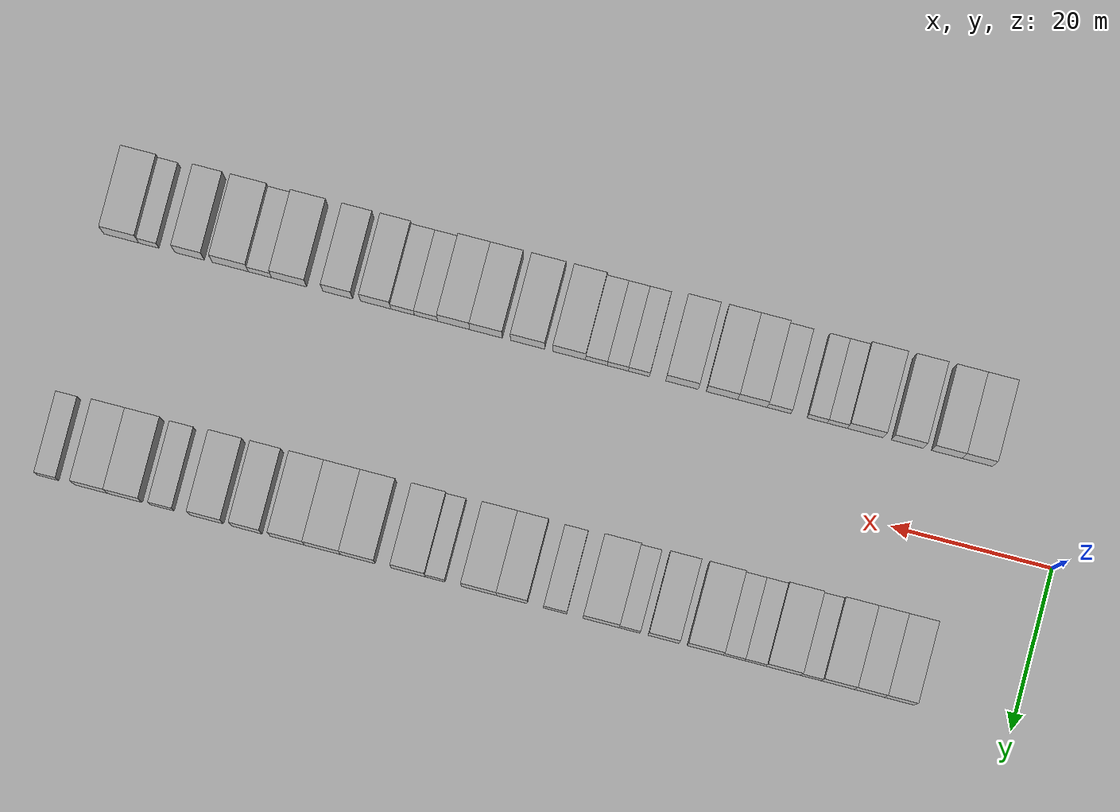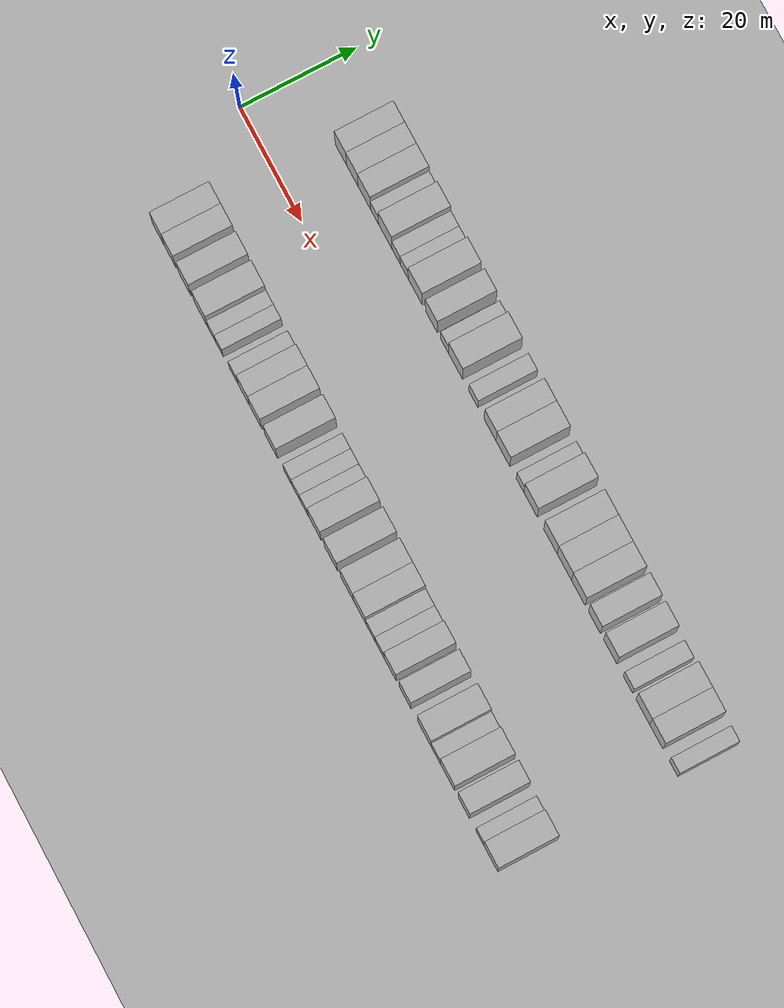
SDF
<sdf version="1.6">
 <world name="default">
  <include><name>ground_plane_1</name><uri>model://HANNAS_ground_plane</uri></include>
  <include>
   <name>ground_plane_2</name>
   <uri>model://HANNAS_ground_plane</uri>
   <pose>100 0 0  0 0 0</pose>
  </include>
  <model name="building_1">
   <static>1</static>
   <pose>13.8397 15.0000 0 0.000000 0.000000 1.570796</pose>
   <link name="link">
    <pose>0 0 4.50 0 0 0</pose>
    <collision name="collision"><geometry><box><size>10.0000 3.6794 9.0000</size></box></geometry></collision>
    <visual name="visual">
     <cast_shadows>0</cast_shadows>
     <geometry><box><size>10.0000 3.6794 9.0000</size></box></geometry>
     <material>
      <script>
       <uri>model://HANNAS_wall/materials/scripts</uri>
       <uri>model://HANNAS_wall/materials/textures</uri>
       <name>vrc/HANNAS_wall</name>
      </script>
     </material>
    </visual>
   </link>
  </model>
  <model name="building_2">
   <static>1</static>
   <pose>17.5218 15.0000 0 0.000000 0.000000 1.570796</pose>
   <link name="link">
    <pose>0 0 4.50 0 0 0</pose>
    <collision name="collision"><geometry><box><size>10.0000 3.6849 9.0000</size></box></geometry></collision>
    <visual name="visual">
     <cast_shadows>0</cast_shadows>
     <geometry><box><size>10.0000 3.6849 9.0000</size></box></geometry>
     <material>
      <script>
       <uri>model://HANNAS_wall/materials/scripts</uri>
       <uri>model://HANNAS_wall/materials/textures</uri>
       <name>vrc/HANNAS_wall</name>
      </script>
     </material>
    </visual>
   </link>
  </model>
  <model name="building_3">
   <static>1</static>
   <pose>21.3801 15.0000 0 0.000000 0.000000 1.570796</pose>
   <link name="link">
    <pose>0 0 4.50 0 0 0</pose>
    <collision name="collision"><geometry><box><size>10.0000 4.0316 9.0000</size></box></geometry></collision>
    <visual name="visual">
     <cast_shadows>0</cast_shadows>
     <geometry><box><size>10.0000 4.0316 9.0000</size></box></geometry>
     <material>
      <script>
       <uri>model://HANNAS_wall/materials/scripts</uri>
       <uri>model://HANNAS_wall/materials/textures</uri>
       <name>vrc/HANNAS_wall</name>
      </script>
     </material>
    </visual>
   </link>
  </model>
  <model name="building_4">
   <static>1</static>
   <pose>24.6858 15.0000 0 0.000000 0.000000 1.570796</pose>
   <link name="link">
    <pose>0 0 3.00 0 0 0</pose>
    <collision name="collision"><geometry><box><size>10.0000 2.5798 6.0000</size></box></geometry></collision>
    <visual name="visual">
     <cast_shadows>0</cast_shadows>
     <geometry><box><size>10.0000 2.5798 6.0000</size></box></geometry>
     <material>
      <script>
       <uri>model://HANNAS_wall/materials/scripts</uri>
       <uri>model://HANNAS_wall/materials/textures</uri>
       <name>vrc/HANNAS_wall</name>
      </script>
     </material>
    </visual>
   </link>
  </model>
  <model name="building_5">
   <static>1</static>
   <pose>28.1155 15.0000 0 0.000000 0.000000 1.570796</pose>
   <link name="link">
    <pose>0 0 4.50 0 0 0</pose>
    <collision name="collision"><geometry><box><size>10.0000 4.2796 9.0000</size></box></geometry></collision>
    <visual name="visual">
     <cast_shadows>0</cast_shadows>
     <geometry><box><size>10.0000 4.2796 9.0000</size></box></geometry>
     <material>
      <script>
       <uri>model://HANNAS_wall/materials/scripts</uri>
       <uri>model://HANNAS_wall/materials/textures</uri>
       <name>vrc/HANNAS_wall</name>
      </script>
     </material>
    </visual>
   </link>
  </model>
  <model name="building_6">
   <static>1</static>
   <pose>31.5834 15.0000 0 0.000000 0.000000 1.570796</pose>
   <link name="link">
    <pose>0 0 3.00 0 0 0</pose>
    <collision name="collision"><geometry><box><size>10.0000 2.6562 6.0000</size></box></geometry></collision>
    <visual name="visual">
     <cast_shadows>0</cast_shadows>
     <geometry><box><size>10.0000 2.6562 6.0000</size></box></geometry>
     <material>
      <script>
       <uri>model://HANNAS_wall/materials/scripts</uri>
       <uri>model://HANNAS_wall/materials/textures</uri>
       <name>vrc/HANNAS_wall</name>
      </script>
     </material>
    </visual>
   </link>
  </model>
  <model name="building_7">
   <static>1</static>
   <pose>34.2161 15.0000 0 0.000000 0.000000 1.570796</pose>
   <link name="link">
    <pose>0 0 3.00 0 0 0</pose>
    <collision name="collision"><geometry><box><size>10.0000 2.6093 6.0000</size></box></geometry></collision>
    <visual name="visual">
     <cast_shadows>0</cast_shadows>
     <geometry><box><size>10.0000 2.6093 6.0000</size></box></geometry>
     <material>
      <script>
       <uri>model://HANNAS_wall/materials/scripts</uri>
       <uri>model://HANNAS_wall/materials/textures</uri>
       <name>vrc/HANNAS_wall</name>
      </script>
     </material>
    </visual>
   </link>
  </model>
  <model name="building_8">
   <static>1</static>
   <pose>37.7383 15.0000 0 0.000000 0.000000 1.570796</pose>
   <link name="link">
    <pose>0 0 4.50 0 0 0</pose>
    <collision name="collision"><geometry><box><size>10.0000 4.4352 9.0000</size></box></geometry></collision>
    <visual name="visual">
     <cast_shadows>0</cast_shadows>
     <geometry><box><size>10.0000 4.4352 9.0000</size></box></geometry>
     <material>
      <script>
       <uri>model://HANNAS_wall/materials/scripts</uri>
       <uri>model://HANNAS_wall/materials/textures</uri>
       <name>vrc/HANNAS_wall</name>
      </script>
     </material>
    </visual>
   </link>
  </model>
  <model name="building_9">
   <static>1</static>
   <pose>42.8617 15.0000 0 0.000000 0.000000 1.570796</pose>
   <link name="link">
    <pose>0 0 4.50 0 0 0</pose>
    <collision name="collision"><geometry><box><size>10.0000 3.8115 9.0000</size></box></geometry></collision>
    <visual name="visual">
     <cast_shadows>0</cast_shadows>
     <geometry><box><size>10.0000 3.8115 9.0000</size></box></geometry>
     <material>
      <script>
       <uri>model://HANNAS_wall/materials/scripts</uri>
       <uri>model://HANNAS_wall/materials/textures</uri>
       <name>vrc/HANNAS_wall</name>
      </script>
     </material>
    </visual>
   </link>
  </model>
  <model name="building_10">
   <static>1</static>
   <pose>47.0494 15.0000 0 0.000000 0.000000 1.570796</pose>
   <link name="link">
    <pose>0 0 3.00 0 0 0</pose>
    <collision name="collision"><geometry><box><size>10.0000 2.5639 6.0000</size></box></geometry></collision>
    <visual name="visual">
     <cast_shadows>0</cast_shadows>
     <geometry><box><size>10.0000 2.5639 6.0000</size></box></geometry>
     <material>
      <script>
       <uri>model://HANNAS_wall/materials/scripts</uri>
       <uri>model://HANNAS_wall/materials/textures</uri>
       <name>vrc/HANNAS_wall</name>
      </script>
     </material>
    </visual>
   </link>
  </model>
  <model name="building_11">
   <static>1</static>
   <pose>50.5670 15.0000 0 0.000000 0.000000 1.570796</pose>
   <link name="link">
    <pose>0 0 4.50 0 0 0</pose>
    <collision name="collision"><geometry><box><size>10.0000 4.4715 9.0000</size></box></geometry></collision>
    <visual name="visual">
     <cast_shadows>0</cast_shadows>
     <geometry><box><size>10.0000 4.4715 9.0000</size></box></geometry>
     <material>
      <script>
       <uri>model://HANNAS_wall/materials/scripts</uri>
       <uri>model://HANNAS_wall/materials/textures</uri>
       <name>vrc/HANNAS_wall</name>
      </script>
     </material>
    </visual>
   </link>
  </model>
  <model name="building_12">
   <static>1</static>
   <pose>56.2342 15.0000 0 0.000000 0.000000 1.570796</pose>
   <link name="link">
    <pose>0 0 3.00 0 0 0</pose>
    <collision name="collision"><geometry><box><size>10.0000 2.8628 6.0000</size></box></geometry></collision>
    <visual name="visual">
     <cast_shadows>0</cast_shadows>
     <geometry><box><size>10.0000 2.8628 6.0000</size></box></geometry>
     <material>
      <script>
       <uri>model://HANNAS_wall/materials/scripts</uri>
       <uri>model://HANNAS_wall/materials/textures</uri>
       <name>vrc/HANNAS_wall</name>
      </script>
     </material>
    </visual>
   </link>
  </model>
  <model name="building_13">
   <static>1</static>
   <pose>61.5704 15.0000 0 0.000000 0.000000 1.570796</pose>
   <link name="link">
    <pose>0 0 4.50 0 0 0</pose>
    <collision name="collision"><geometry><box><size>10.0000 3.8097 9.0000</size></box></geometry></collision>
    <visual name="visual">
     <cast_shadows>0</cast_shadows>
     <geometry><box><size>10.0000 3.8097 9.0000</size></box></geometry>
     <material>
      <script>
       <uri>model://HANNAS_wall/materials/scripts</uri>
       <uri>model://HANNAS_wall/materials/textures</uri>
       <name>vrc/HANNAS_wall</name>
      </script>
     </material>
    </visual>
   </link>
  </model>
  <model name="building_14">
   <static>1</static>
   <pose>65.6387 15.0000 0 0.000000 0.000000 1.570796</pose>
   <link name="link">
    <pose>0 0 4.50 0 0 0</pose>
    <collision name="collision"><geometry><box><size>10.0000 4.3270 9.0000</size></box></geometry></collision>
    <visual name="visual">
     <cast_shadows>0</cast_shadows>
     <geometry><box><size>10.0000 4.3270 9.0000</size></box></geometry>
     <material>
      <script>
       <uri>model://HANNAS_wall/materials/scripts</uri>
       <uri>model://HANNAS_wall/materials/textures</uri>
       <name>vrc/HANNAS_wall</name>
      </script>
     </material>
    </visual>
   </link>
  </model>
  <model name="building_15">
   <static>1</static>
   <pose>71.0189 15.0000 0 0.000000 0.000000 1.570796</pose>
   <link name="link">
    <pose>0 0 3.00 0 0 0</pose>
    <collision name="collision"><geometry><box><size>10.0000 2.4332 6.0000</size></box></geometry></collision>
    <visual name="visual">
     <cast_shadows>0</cast_shadows>
     <geometry><box><size>10.0000 2.4332 6.0000</size></box></geometry>
     <material>
      <script>
       <uri>model://HANNAS_wall/materials/scripts</uri>
       <uri>model://HANNAS_wall/materials/textures</uri>
       <name>vrc/HANNAS_wall</name>
      </script>
     </material>
    </visual>
   </link>
  </model>
  <model name="building_16">
   <static>1</static>
   <pose>74.3353 15.0000 0 0.000000 0.000000 1.570796</pose>
   <link name="link">
    <pose>0 0 4.50 0 0 0</pose>
    <collision name="collision"><geometry><box><size>10.0000 4.1997 9.0000</size></box></geometry></collision>
    <visual name="visual">
     <cast_shadows>0</cast_shadows>
     <geometry><box><size>10.0000 4.1997 9.0000</size></box></geometry>
     <material>
      <script>
       <uri>model://HANNAS_wall/materials/scripts</uri>
       <uri>model://HANNAS_wall/materials/textures</uri>
       <name>vrc/HANNAS_wall</name>
      </script>
     </material>
    </visual>
   </link>
  </model>
  <model name="building_17">
   <static>1</static>
   <pose>80.5745 15.0000 0 0.000000 0.000000 1.570796</pose>
   <link name="link">
    <pose>0 0 4.50 0 0 0</pose>
    <collision name="collision"><geometry><box><size>10.0000 4.2787 9.0000</size></box></geometry></collision>
    <visual name="visual">
     <cast_shadows>0</cast_shadows>
     <geometry><box><size>10.0000 4.2787 9.0000</size></box></geometry>
     <material>
      <script>
       <uri>model://HANNAS_wall/materials/scripts</uri>
       <uri>model://HANNAS_wall/materials/textures</uri>
       <name>vrc/HANNAS_wall</name>
      </script>
     </material>
    </visual>
   </link>
  </model>
  <model name="building_18">
   <static>1</static>
   <pose>84.9429 15.0000 0 0.000000 0.000000 1.570796</pose>
   <link name="link">
    <pose>0 0 4.50 0 0 0</pose>
    <collision name="collision"><geometry><box><size>10.0000 4.4583 9.0000</size></box></geometry></collision>
    <visual name="visual">
     <cast_shadows>0</cast_shadows>
     <geometry><box><size>10.0000 4.4583 9.0000</size></box></geometry>
     <material>
      <script>
       <uri>model://HANNAS_wall/materials/scripts</uri>
       <uri>model://HANNAS_wall/materials/textures</uri>
       <name>vrc/HANNAS_wall</name>
      </script>
     </material>
    </visual>
   </link>
  </model>
  <model name="building_19">
   <static>1</static>
   <pose>89.2964 15.0000 0 0.000000 0.000000 1.570796</pose>
   <link name="link">
    <pose>0 0 4.50 0 0 0</pose>
    <collision name="collision"><geometry><box><size>10.0000 4.2488 9.0000</size></box></geometry></collision>
    <visual name="visual">
     <cast_shadows>0</cast_shadows>
     <geometry><box><size>10.0000 4.2488 9.0000</size></box></geometry>
     <material>
      <script>
       <uri>model://HANNAS_wall/materials/scripts</uri>
       <uri>model://HANNAS_wall/materials/textures</uri>
       <name>vrc/HANNAS_wall</name>
      </script>
     </material>
    </visual>
   </link>
  </model>
  <model name="building_20">
   <static>1</static>
   <pose>94.2962 15.0000 0 0.000000 0.000000 1.570796</pose>
   <link name="link">
    <pose>0 0 4.50 0 0 0</pose>
    <collision name="collision"><geometry><box><size>10.0000 3.7507 9.0000</size></box></geometry></collision>
    <visual name="visual">
     <cast_shadows>0</cast_shadows>
     <geometry><box><size>10.0000 3.7507 9.0000</size></box></geometry>
     <material>
      <script>
       <uri>model://HANNAS_wall/materials/scripts</uri>
       <uri>model://HANNAS_wall/materials/textures</uri>
       <name>vrc/HANNAS_wall</name>
      </script>
     </material>
    </visual>
   </link>
  </model>
  <model name="building_21">
   <static>1</static>
   <pose>99.2326 15.0000 0 0.000000 0.000000 1.570796</pose>
   <link name="link">
    <pose>0 0 4.50 0 0 0</pose>
    <collision name="collision"><geometry><box><size>10.0000 4.1222 9.0000</size></box></geometry></collision>
    <visual name="visual">
     <cast_shadows>0</cast_shadows>
     <geometry><box><size>10.0000 4.1222 9.0000</size></box></geometry>
     <material>
      <script>
       <uri>model://HANNAS_wall/materials/scripts</uri>
       <uri>model://HANNAS_wall/materials/textures</uri>
       <name>vrc/HANNAS_wall</name>
      </script>
     </material>
    </visual>
   </link>
  </model>
  <model name="building_22">
   <static>1</static>
   <pose>104.7581 15.0000 0 0.000000 0.000000 1.570796</pose>
   <link name="link">
    <pose>0 0 3.00 0 0 0</pose>
    <collision name="collision"><geometry><box><size>10.0000 2.9286 6.0000</size></box></geometry></collision>
    <visual name="visual">
     <cast_shadows>0</cast_shadows>
     <geometry><box><size>10.0000 2.9286 6.0000</size></box></geometry>
     <material>
      <script>
       <uri>model://HANNAS_wall/materials/scripts</uri>
       <uri>model://HANNAS_wall/materials/textures</uri>
       <name>vrc/HANNAS_wall</name>
      </script>
     </material>
    </visual>
   </link>
  </model>
  <model name="building_23">
   <static>1</static>
   <pose>109.3536 15.0000 0 0.000000 0.000000 1.570796</pose>
   <link name="link">
    <pose>0 0 4.50 0 0 0</pose>
    <collision name="collision"><geometry><box><size>10.0000 4.2624 9.0000</size></box></geometry></collision>
    <visual name="visual">
     <cast_shadows>0</cast_shadows>
     <geometry><box><size>10.0000 4.2624 9.0000</size></box></geometry>
     <material>
      <script>
       <uri>model://HANNAS_wall/materials/scripts</uri>
       <uri>model://HANNAS_wall/materials/textures</uri>
       <name>vrc/HANNAS_wall</name>
      </script>
     </material>
    </visual>
   </link>
  </model>
  <model name="building_24">
   <static>1</static>
   <pose>113.5259 15.0000 0 0.000000 0.000000 1.570796</pose>
   <link name="link">
    <pose>0 0 4.50 0 0 0</pose>
    <collision name="collision"><geometry><box><size>10.0000 4.0823 9.0000</size></box></geometry></collision>
    <visual name="visual">
     <cast_shadows>0</cast_shadows>
     <geometry><box><size>10.0000 4.0823 9.0000</size></box></geometry>
     <material>
      <script>
       <uri>model://HANNAS_wall/materials/scripts</uri>
       <uri>model://HANNAS_wall/materials/textures</uri>
       <name>vrc/HANNAS_wall</name>
      </script>
     </material>
    </visual>
   </link>
  </model>
  <model name="building_25">
   <static>1</static>
   <pose>118.8828 15.0000 0 0.000000 0.000000 1.570796</pose>
   <link name="link">
    <pose>0 0 3.00 0 0 0</pose>
    <collision name="collision"><geometry><box><size>10.0000 2.6316 6.0000</size></box></geometry></collision>
    <visual name="visual">
     <cast_shadows>0</cast_shadows>
     <geometry><box><size>10.0000 2.6316 6.0000</size></box></geometry>
     <material>
      <script>
       <uri>model://HANNAS_wall/materials/scripts</uri>
       <uri>model://HANNAS_wall/materials/textures</uri>
       <name>vrc/HANNAS_wall</name>
      </script>
     </material>
    </visual>
   </link>
  </model>
  <model name="building_52">
   <static>1</static>
   <pose>11.8952 -15.0000 0 0.000000 0.000000 1.570796</pose>
   <link name="link">
    <pose>0 0 4.50 0 0 0</pose>
    <collision name="collision"><geometry><box><size>10.0000 3.7903 9.0000</size></box></geometry></collision>
    <visual name="visual">
     <cast_shadows>0</cast_shadows>
     <geometry><box><size>10.0000 3.7903 9.0000</size></box></geometry>
     <material>
      <script>
       <uri>model://HANNAS_wall/materials/scripts</uri>
       <uri>model://HANNAS_wall/materials/textures</uri>
       <name>vrc/HANNAS_wall</name>
      </script>
     </material>
    </visual>
   </link>
  </model>
  <model name="building_53">
   <static>1</static>
   <pose>15.6842 -15.0000 0 0.000000 0.000000 1.570796</pose>
   <link name="link">
    <pose>0 0 4.50 0 0 0</pose>
    <collision name="collision"><geometry><box><size>10.0000 3.7877 9.0000</size></box></geometry></collision>
    <visual name="visual">
     <cast_shadows>0</cast_shadows>
     <geometry><box><size>10.0000 3.7877 9.0000</size></box></geometry>
     <material>
      <script>
       <uri>model://HANNAS_wall/materials/scripts</uri>
       <uri>model://HANNAS_wall/materials/textures</uri>
       <name>vrc/HANNAS_wall</name>
      </script>
     </material>
    </visual>
   </link>
  </model>
  <model name="building_54">
   <static>1</static>
   <pose>20.5455 -15.0000 0 0.000000 0.000000 1.570796</pose>
   <link name="link">
    <pose>0 0 4.50 0 0 0</pose>
    <collision name="collision"><geometry><box><size>10.0000 3.9350 9.0000</size></box></geometry></collision>
    <visual name="visual">
     <cast_shadows>0</cast_shadows>
     <geometry><box><size>10.0000 3.9350 9.0000</size></box></geometry>
     <material>
      <script>
       <uri>model://HANNAS_wall/materials/scripts</uri>
       <uri>model://HANNAS_wall/materials/textures</uri>
       <name>vrc/HANNAS_wall</name>
      </script>
     </material>
    </visual>
   </link>
  </model>
  <model name="building_55">
   <static>1</static>
   <pose>25.7320 -15.0000 0 0.000000 0.000000 1.570796</pose>
   <link name="link">
    <pose>0 0 4.50 0 0 0</pose>
    <collision name="collision"><geometry><box><size>10.0000 4.4380 9.0000</size></box></geometry></collision>
    <visual name="visual">
     <cast_shadows>0</cast_shadows>
     <geometry><box><size>10.0000 4.4380 9.0000</size></box></geometry>
     <material>
      <script>
       <uri>model://HANNAS_wall/materials/scripts</uri>
       <uri>model://HANNAS_wall/materials/textures</uri>
       <name>vrc/HANNAS_wall</name>
      </script>
     </material>
    </visual>
   </link>
  </model>
  <model name="building_56">
   <static>1</static>
   <pose>29.2053 -15.0000 0 0.000000 0.000000 1.570796</pose>
   <link name="link">
    <pose>0 0 3.00 0 0 0</pose>
    <collision name="collision"><geometry><box><size>10.0000 2.5085 6.0000</size></box></geometry></collision>
    <visual name="visual">
     <cast_shadows>0</cast_shadows>
     <geometry><box><size>10.0000 2.5085 6.0000</size></box></geometry>
     <material>
      <script>
       <uri>model://HANNAS_wall/materials/scripts</uri>
       <uri>model://HANNAS_wall/materials/textures</uri>
       <name>vrc/HANNAS_wall</name>
      </script>
     </material>
    </visual>
   </link>
  </model>
  <model name="building_57">
   <static>1</static>
   <pose>31.7024 -15.0000 0 0.000000 0.000000 1.570796</pose>
   <link name="link">
    <pose>0 0 3.00 0 0 0</pose>
    <collision name="collision"><geometry><box><size>10.0000 2.4858 6.0000</size></box></geometry></collision>
    <visual name="visual">
     <cast_shadows>0</cast_shadows>
     <geometry><box><size>10.0000 2.4858 6.0000</size></box></geometry>
     <material>
      <script>
       <uri>model://HANNAS_wall/materials/scripts</uri>
       <uri>model://HANNAS_wall/materials/textures</uri>
       <name>vrc/HANNAS_wall</name>
      </script>
     </material>
    </visual>
   </link>
  </model>
  <model name="building_58">
   <static>1</static>
   <pose>36.4088 -15.0000 0 0.000000 0.000000 1.570796</pose>
   <link name="link">
    <pose>0 0 3.00 0 0 0</pose>
    <collision name="collision"><geometry><box><size>10.0000 2.9269 6.0000</size></box></geometry></collision>
    <visual name="visual">
     <cast_shadows>0</cast_shadows>
     <geometry><box><size>10.0000 2.9269 6.0000</size></box></geometry>
     <material>
      <script>
       <uri>model://HANNAS_wall/materials/scripts</uri>
       <uri>model://HANNAS_wall/materials/textures</uri>
       <name>vrc/HANNAS_wall</name>
      </script>
     </material>
    </visual>
   </link>
  </model>
  <model name="building_59">
   <static>1</static>
   <pose>39.6919 -15.0000 0 0.000000 0.000000 1.570796</pose>
   <link name="link">
    <pose>0 0 4.50 0 0 0</pose>
    <collision name="collision"><geometry><box><size>10.0000 3.6393 9.0000</size></box></geometry></collision>
    <visual name="visual">
     <cast_shadows>0</cast_shadows>
     <geometry><box><size>10.0000 3.6393 9.0000</size></box></geometry>
     <material>
      <script>
       <uri>model://HANNAS_wall/materials/scripts</uri>
       <uri>model://HANNAS_wall/materials/textures</uri>
       <name>vrc/HANNAS_wall</name>
      </script>
     </material>
    </visual>
   </link>
  </model>
  <model name="building_60">
   <static>1</static>
   <pose>43.4599 -15.0000 0 0.000000 0.000000 1.570796</pose>
   <link name="link">
    <pose>0 0 4.50 0 0 0</pose>
    <collision name="collision"><geometry><box><size>10.0000 3.8965 9.0000</size></box></geometry></collision>
    <visual name="visual">
     <cast_shadows>0</cast_shadows>
     <geometry><box><size>10.0000 3.8965 9.0000</size></box></geometry>
     <material>
      <script>
       <uri>model://HANNAS_wall/materials/scripts</uri>
       <uri>model://HANNAS_wall/materials/textures</uri>
       <name>vrc/HANNAS_wall</name>
      </script>
     </material>
    </visual>
   </link>
  </model>
  <model name="building_61">
   <static>1</static>
   <pose>48.4150 -15.0000 0 0.000000 0.000000 1.570796</pose>
   <link name="link">
    <pose>0 0 4.50 0 0 0</pose>
    <collision name="collision"><geometry><box><size>10.0000 4.0138 9.0000</size></box></geometry></collision>
    <visual name="visual">
     <cast_shadows>0</cast_shadows>
     <geometry><box><size>10.0000 4.0138 9.0000</size></box></geometry>
     <material>
      <script>
       <uri>model://HANNAS_wall/materials/scripts</uri>
       <uri>model://HANNAS_wall/materials/textures</uri>
       <name>vrc/HANNAS_wall</name>
      </script>
     </material>
    </visual>
   </link>
  </model>
  <model name="building_62">
   <static>1</static>
   <pose>53.7369 -15.0000 0 0.000000 0.000000 1.570796</pose>
   <link name="link">
    <pose>0 0 3.00 0 0 0</pose>
    <collision name="collision"><geometry><box><size>10.0000 2.6300 6.0000</size></box></geometry></collision>
    <visual name="visual">
     <cast_shadows>0</cast_shadows>
     <geometry><box><size>10.0000 2.6300 6.0000</size></box></geometry>
     <material>
      <script>
       <uri>model://HANNAS_wall/materials/scripts</uri>
       <uri>model://HANNAS_wall/materials/textures</uri>
       <name>vrc/HANNAS_wall</name>
      </script>
     </material>
    </visual>
   </link>
  </model>
  <model name="building_63">
   <static>1</static>
   <pose>56.3555 -15.0000 0 0.000000 0.000000 1.570796</pose>
   <link name="link">
    <pose>0 0 3.00 0 0 0</pose>
    <collision name="collision"><geometry><box><size>10.0000 2.6072 6.0000</size></box></geometry></collision>
    <visual name="visual">
     <cast_shadows>0</cast_shadows>
     <geometry><box><size>10.0000 2.6072 6.0000</size></box></geometry>
     <material>
      <script>
       <uri>model://HANNAS_wall/materials/scripts</uri>
       <uri>model://HANNAS_wall/materials/textures</uri>
       <name>vrc/HANNAS_wall</name>
      </script>
     </material>
    </visual>
   </link>
  </model>
  <model name="building_64">
   <static>1</static>
   <pose>59.0030 -15.0000 0 0.000000 0.000000 1.570796</pose>
   <link name="link">
    <pose>0 0 3.00 0 0 0</pose>
    <collision name="collision"><geometry><box><size>10.0000 2.6878 6.0000</size></box></geometry></collision>
    <visual name="visual">
     <cast_shadows>0</cast_shadows>
     <geometry><box><size>10.0000 2.6878 6.0000</size></box></geometry>
     <material>
      <script>
       <uri>model://HANNAS_wall/materials/scripts</uri>
       <uri>model://HANNAS_wall/materials/textures</uri>
       <name>vrc/HANNAS_wall</name>
      </script>
     </material>
    </visual>
   </link>
  </model>
  <model name="building_65">
   <static>1</static>
   <pose>62.3762 -15.0000 0 0.000000 0.000000 1.570796</pose>
   <link name="link">
    <pose>0 0 4.50 0 0 0</pose>
    <collision name="collision"><geometry><box><size>10.0000 4.0586 9.0000</size></box></geometry></collision>
    <visual name="visual">
     <cast_shadows>0</cast_shadows>
     <geometry><box><size>10.0000 4.0586 9.0000</size></box></geometry>
     <material>
      <script>
       <uri>model://HANNAS_wall/materials/scripts</uri>
       <uri>model://HANNAS_wall/materials/textures</uri>
       <name>vrc/HANNAS_wall</name>
      </script>
     </material>
    </visual>
   </link>
  </model>
  <model name="building_66">
   <static>1</static>
   <pose>67.5214 -15.0000 0 0.000000 0.000000 1.570796</pose>
   <link name="link">
    <pose>0 0 4.50 0 0 0</pose>
    <collision name="collision"><geometry><box><size>10.0000 4.2317 9.0000</size></box></geometry></collision>
    <visual name="visual">
     <cast_shadows>0</cast_shadows>
     <geometry><box><size>10.0000 4.2317 9.0000</size></box></geometry>
     <material>
      <script>
       <uri>model://HANNAS_wall/materials/scripts</uri>
       <uri>model://HANNAS_wall/materials/textures</uri>
       <name>vrc/HANNAS_wall</name>
      </script>
     </material>
    </visual>
   </link>
  </model>
  <model name="building_67">
   <static>1</static>
   <pose>72.6608 -15.0000 0 0.000000 0.000000 1.570796</pose>
   <link name="link">
    <pose>0 0 4.50 0 0 0</pose>
    <collision name="collision"><geometry><box><size>10.0000 4.0473 9.0000</size></box></geometry></collision>
    <visual name="visual">
     <cast_shadows>0</cast_shadows>
     <geometry><box><size>10.0000 4.0473 9.0000</size></box></geometry>
     <material>
      <script>
       <uri>model://HANNAS_wall/materials/scripts</uri>
       <uri>model://HANNAS_wall/materials/textures</uri>
       <name>vrc/HANNAS_wall</name>
      </script>
     </material>
    </visual>
   </link>
  </model>
  <model name="building_68">
   <static>1</static>
   <pose>76.6732 -15.0000 0 0.000000 0.000000 1.570796</pose>
   <link name="link">
    <pose>0 0 4.50 0 0 0</pose>
    <collision name="collision"><geometry><box><size>10.0000 3.9776 9.0000</size></box></geometry></collision>
    <visual name="visual">
     <cast_shadows>0</cast_shadows>
     <geometry><box><size>10.0000 3.9776 9.0000</size></box></geometry>
     <material>
      <script>
       <uri>model://HANNAS_wall/materials/scripts</uri>
       <uri>model://HANNAS_wall/materials/textures</uri>
       <name>vrc/HANNAS_wall</name>
      </script>
     </material>
    </visual>
   </link>
  </model>
  <model name="building_69">
   <static>1</static>
   <pose>80.1014 -15.0000 0 0.000000 0.000000 1.570796</pose>
   <link name="link">
    <pose>0 0 3.00 0 0 0</pose>
    <collision name="collision"><geometry><box><size>10.0000 2.8788 6.0000</size></box></geometry></collision>
    <visual name="visual">
     <cast_shadows>0</cast_shadows>
     <geometry><box><size>10.0000 2.8788 6.0000</size></box></geometry>
     <material>
      <script>
       <uri>model://HANNAS_wall/materials/scripts</uri>
       <uri>model://HANNAS_wall/materials/textures</uri>
       <name>vrc/HANNAS_wall</name>
      </script>
     </material>
    </visual>
   </link>
  </model>
  <model name="building_70">
   <static>1</static>
   <pose>82.9962 -15.0000 0 0.000000 0.000000 1.570796</pose>
   <link name="link">
    <pose>0 0 3.00 0 0 0</pose>
    <collision name="collision"><geometry><box><size>10.0000 2.9108 6.0000</size></box></geometry></collision>
    <visual name="visual">
     <cast_shadows>0</cast_shadows>
     <geometry><box><size>10.0000 2.9108 6.0000</size></box></geometry>
     <material>
      <script>
       <uri>model://HANNAS_wall/materials/scripts</uri>
       <uri>model://HANNAS_wall/materials/textures</uri>
       <name>vrc/HANNAS_wall</name>
      </script>
     </material>
    </visual>
   </link>
  </model>
  <model name="building_71">
   <static>1</static>
   <pose>86.3245 -15.0000 0 0.000000 0.000000 1.570796</pose>
   <link name="link">
    <pose>0 0 4.50 0 0 0</pose>
    <collision name="collision"><geometry><box><size>10.0000 3.7457 9.0000</size></box></geometry></collision>
    <visual name="visual">
     <cast_shadows>0</cast_shadows>
     <geometry><box><size>10.0000 3.7457 9.0000</size></box></geometry>
     <material>
      <script>
       <uri>model://HANNAS_wall/materials/scripts</uri>
       <uri>model://HANNAS_wall/materials/textures</uri>
       <name>vrc/HANNAS_wall</name>
      </script>
     </material>
    </visual>
   </link>
  </model>
  <model name="building_72">
   <static>1</static>
   <pose>91.0410 -15.0000 0 0.000000 0.000000 1.570796</pose>
   <link name="link">
    <pose>0 0 4.50 0 0 0</pose>
    <collision name="collision"><geometry><box><size>10.0000 3.6872 9.0000</size></box></geometry></collision>
    <visual name="visual">
     <cast_shadows>0</cast_shadows>
     <geometry><box><size>10.0000 3.6872 9.0000</size></box></geometry>
     <material>
      <script>
       <uri>model://HANNAS_wall/materials/scripts</uri>
       <uri>model://HANNAS_wall/materials/textures</uri>
       <name>vrc/HANNAS_wall</name>
      </script>
     </material>
    </visual>
   </link>
  </model>
  <model name="building_73">
   <static>1</static>
   <pose>97.0474 -15.0000 0 0.000000 0.000000 1.570796</pose>
   <link name="link">
    <pose>0 0 4.50 0 0 0</pose>
    <collision name="collision"><geometry><box><size>10.0000 4.3257 9.0000</size></box></geometry></collision>
    <visual name="visual">
     <cast_shadows>0</cast_shadows>
     <geometry><box><size>10.0000 4.3257 9.0000</size></box></geometry>
     <material>
      <script>
       <uri>model://HANNAS_wall/materials/scripts</uri>
       <uri>model://HANNAS_wall/materials/textures</uri>
       <name>vrc/HANNAS_wall</name>
      </script>
     </material>
    </visual>
   </link>
  </model>
  <model name="building_74">
   <static>1</static>
   <pose>100.6593 -15.0000 0 0.000000 0.000000 1.570796</pose>
   <link name="link">
    <pose>0 0 3.00 0 0 0</pose>
    <collision name="collision"><geometry><box><size>10.0000 2.8981 6.0000</size></box></geometry></collision>
    <visual name="visual">
     <cast_shadows>0</cast_shadows>
     <geometry><box><size>10.0000 2.8981 6.0000</size></box></geometry>
     <material>
      <script>
       <uri>model://HANNAS_wall/materials/scripts</uri>
       <uri>model://HANNAS_wall/materials/textures</uri>
       <name>vrc/HANNAS_wall</name>
      </script>
     </material>
    </visual>
   </link>
  </model>
  <model name="building_75">
   <static>1</static>
   <pose>104.3410 -15.0000 0 0.000000 0.000000 1.570796</pose>
   <link name="link">
    <pose>0 0 4.50 0 0 0</pose>
    <collision name="collision"><geometry><box><size>10.0000 4.4653 9.0000</size></box></geometry></collision>
    <visual name="visual">
     <cast_shadows>0</cast_shadows>
     <geometry><box><size>10.0000 4.4653 9.0000</size></box></geometry>
     <material>
      <script>
       <uri>model://HANNAS_wall/materials/scripts</uri>
       <uri>model://HANNAS_wall/materials/textures</uri>
       <name>vrc/HANNAS_wall</name>
      </script>
     </material>
    </visual>
   </link>
  </model>
  <model name="building_76">
   <static>1</static>
   <pose>109.3901 -15.0000 0 0.000000 0.000000 1.570796</pose>
   <link name="link">
    <pose>0 0 4.50 0 0 0</pose>
    <collision name="collision"><geometry><box><size>10.0000 3.6329 9.0000</size></box></geometry></collision>
    <visual name="visual">
     <cast_shadows>0</cast_shadows>
     <geometry><box><size>10.0000 3.6329 9.0000</size></box></geometry>
     <material>
      <script>
       <uri>model://HANNAS_wall/materials/scripts</uri>
       <uri>model://HANNAS_wall/materials/textures</uri>
       <name>vrc/HANNAS_wall</name>
      </script>
     </material>
    </visual>
   </link>
  </model>
  <model name="building_77">
   <static>1</static>
   <pose>114.4494 -15.0000 0 0.000000 0.000000 1.570796</pose>
   <link name="link">
    <pose>0 0 3.00 0 0 0</pose>
    <collision name="collision"><geometry><box><size>10.0000 2.4856 6.0000</size></box></geometry></collision>
    <visual name="visual">
     <cast_shadows>0</cast_shadows>
     <geometry><box><size>10.0000 2.4856 6.0000</size></box></geometry>
     <material>
      <script>
       <uri>model://HANNAS_wall/materials/scripts</uri>
       <uri>model://HANNAS_wall/materials/textures</uri>
       <name>vrc/HANNAS_wall</name>
      </script>
     </material>
    </visual>
   </link>
  </model>
  <model name="building_78">
   <static>1</static>
   <pose>117.8683 -15.0000 0 0.000000 0.000000 1.570796</pose>
   <link name="link">
    <pose>0 0 4.50 0 0 0</pose>
    <collision name="collision"><geometry><box><size>10.0000 4.3523 9.0000</size></box></geometry></collision>
    <visual name="visual">
     <cast_shadows>0</cast_shadows>
     <geometry><box><size>10.0000 4.3523 9.0000</size></box></geometry>
     <material>
      <script>
       <uri>model://HANNAS_wall/materials/scripts</uri>
       <uri>model://HANNAS_wall/materials/textures</uri>
       <name>vrc/HANNAS_wall</name>
      </script>
     </material>
    </visual>
   </link>
  </model>
 </world>
</sdf>
